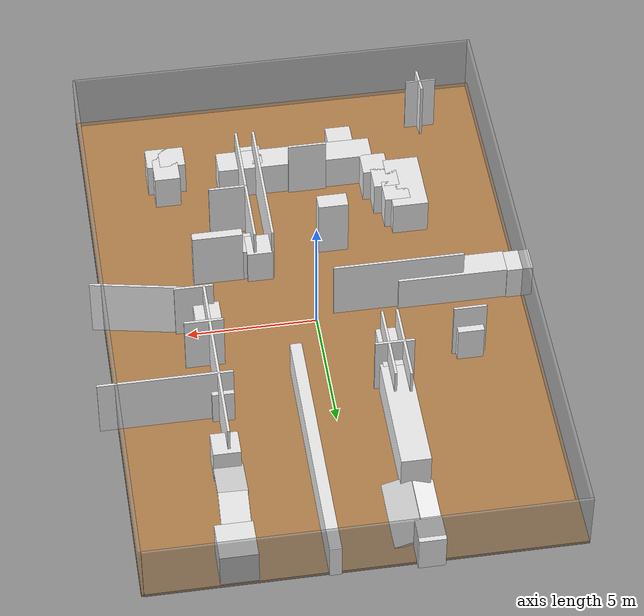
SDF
<sdf version="1.7">
 <world name="default">
  <light name="sun" type="directional">
   <pose>0 0 10 0 -0 0</pose>
   <diffuse>0.8 0.8 0.8 1</diffuse>
   <specular>0.2 0.2 0.2 1</specular>
   <attenuation>
    <range>1000</range>
    <constant>0.9</constant>
    <linear>0.01</linear>
    <quadratic>0.001</quadratic>
   </attenuation>
   <direction>-0.5 0.1 -0.9</direction>
   <spot><inner_angle>0</inner_angle><outer_angle>0</outer_angle><falloff>0</falloff></spot>
  </light>
  <physics name="default_physics" default="0" type="ode">
   <real_time_update_rate>1000</real_time_update_rate>
   <max_step_size>0.001</max_step_size>
   <real_time_factor>1</real_time_factor>
   <ode>
    <solver>
     <type>quick</type>
     <iters>150</iters>
     <precon_iters>0</precon_iters>
     <sor>1.4</sor>
     <use_dynamic_moi_rescaling>1</use_dynamic_moi_rescaling>
    </solver>
    <constraints>
     <cfm>1e-05</cfm>
     <erp>0.2</erp>
     <contact_max_correcting_vel>2000</contact_max_correcting_vel>
     <contact_surface_layer>0.01</contact_surface_layer>
    </constraints>
   </ode>
  </physics>
  <model name="box_1">
   <pose>0.05 -12.05 1.25 0 -0 0</pose>
   <static>1</static>
   <link name="link">
    <collision name="collision"><geometry><box><size>16.1 0.1 2.5</size></box></geometry></collision>
    <visual name="visual">
     <geometry><box><size>16.1 0.1 2.5</size></box></geometry>
     <material>
      <script><name>Gazebo/GreyTransparent</name><uri>file://media/materials/scripts/gazebo.material</uri></script>
     </material>
    </visual>
   </link>
  </model>
  <model name="box_2">
   <pose>8.06174 -0.026302 1.25 0 -0 0</pose>
   <static>1</static>
   <link name="link">
    <collision name="collision"><geometry><box><size>0.1 24.1 2.5</size></box></geometry></collision>
    <visual name="visual">
     <geometry><box><size>0.1 24.1 2.5</size></box></geometry>
     <material>
      <script><name>Gazebo/GreyTransparent</name><uri>file://media/materials/scripts/gazebo.material</uri></script>
     </material>
    </visual>
   </link>
  </model>
  <model name="box_3">
   <pose>-0.05 12.05 1.25 0 -0 0</pose>
   <static>1</static>
   <link name="link">
    <collision name="collision"><geometry><box><size>16.1 0.1 2.5</size></box></geometry></collision>
    <visual name="visual">
     <geometry><box><size>16.1 0.1 2.5</size></box></geometry>
     <material>
      <script><name>Gazebo/GreyTransparent</name><uri>file://media/materials/scripts/gazebo.material</uri></script>
     </material>
    </visual>
   </link>
  </model>
  <model name="box_4">
   <pose>-8.05 -0.05 1.25 0 -0 0</pose>
   <static>1</static>
   <link name="link">
    <collision name="collision"><geometry><box><size>0.1 24.1 2.5</size></box></geometry></collision>
    <visual name="visual">
     <geometry><box><size>0.1 24.1 2.5</size></box></geometry>
     <material>
      <script><name>Gazebo/GreyTransparent</name><uri>file://media/materials/scripts/gazebo.material</uri></script>
     </material>
    </visual>
   </link>
  </model>
  <model name="box_5">
   <pose>-0.014534 -0.091603 -0.05 0 -0 0</pose>
   <static>1</static>
   <link name="link">
    <collision name="collision"><geometry><box><size>16.2 24.2 0.1</size></box></geometry></collision>
    <visual name="visual">
     <geometry><box><size>16.2 24.2 0.1</size></box></geometry>
     <material>
      <script><name>Gazebo/WoodFloor</name><uri>file://media/materials/scripts/gazebo.material</uri></script>
     </material>
    </visual>
   </link>
  </model>
  <gravity>0 0 -9.8066</gravity>
  <magnetic_field>6e-06 2.3e-05 -4.2e-05</magnetic_field>
  <atmosphere type="adiabatic"/>
  <scene><ambient>0.4 0.4 0.4 1</ambient><background>0.7 0.7 0.7 1</background><shadows>1</shadows></scene>
  <spherical_coordinates>
   <surface_model>EARTH_WGS84</surface_model>
   <latitude_deg>0</latitude_deg>
   <longitude_deg>0</longitude_deg>
   <elevation>0</elevation>
   <heading_deg>0</heading_deg>
  </spherical_coordinates>
  <model name="box_8_clone">
   <pose>6.73576 -0.524414 1.25 0 0 -0.191358</pose>
   <static>1</static>
   <link name="link">
    <collision name="collision"><geometry><box><size>3.67087 0.1 2.5</size></box></geometry></collision>
    <visual name="visual">
     <geometry><box><size>3.67087 0.1 2.5</size></box></geometry>
     <material>
      <script><name>Gazebo/White</name><uri>file://media/materials/scripts/gazebo.material</uri></script>
     </material>
    </visual>
   </link>
  </model>
  <model name="box_9_clone_clone_0">
   <pose>-2.15604 -8.36183 0.75 0 -0 0</pose>
   <static>1</static>
   <link name="link">
    <collision name="collision"><geometry><box><size>1 1 1.5</size></box></geometry></collision>
    <visual name="visual">
     <geometry><box><size>1 1 1.5</size></box></geometry>
     <material>
      <script><name>Gazebo/White</name><uri>file://media/materials/scripts/gazebo.material</uri></script>
     </material>
    </visual>
   </link>
  </model>
  <model name="box_9_clone_clone_1">
   <pose>-0.214525 -7.57962 0.75 0 -0 0</pose>
   <static>1</static>
   <link name="link">
    <collision name="collision"><geometry><box><size>6.13337 1 1.5</size></box></geometry></collision>
    <visual name="visual">
     <geometry><box><size>6.13337 1 1.5</size></box></geometry>
     <material>
      <script><name>Gazebo/White</name><uri>file://media/materials/scripts/gazebo.material</uri></script>
     </material>
    </visual>
   </link>
  </model>
  <model name="box_9_clone_clone_2">
   <pose>-3.28595 -6.65197 0.75 0 -0 0</pose>
   <static>1</static>
   <link name="link">
    <collision name="collision"><geometry><box><size>1 1 1.5</size></box></geometry></collision>
    <visual name="visual">
     <geometry><box><size>1 1 1.5</size></box></geometry>
     <material>
      <script><name>Gazebo/White</name><uri>file://media/materials/scripts/gazebo.material</uri></script>
     </material>
    </visual>
   </link>
  </model>
  <model name="box_9_clone_clone_3">
   <pose>5.12025 -8.17677 0.75 0 -0 0</pose>
   <static>1</static>
   <link name="link">
    <collision name="collision"><geometry><box><size>1 1 1.5</size></box></geometry></collision>
    <visual name="visual">
     <geometry><box><size>1 1 1.5</size></box></geometry>
     <material>
      <script><name>Gazebo/White</name><uri>file://media/materials/scripts/gazebo.material</uri></script>
     </material>
    </visual>
   </link>
  </model>
  <model name="box_9_clone_clone_4">
   <pose>4.90057 -7.68592 0.75 0 -0 0</pose>
   <static>1</static>
   <link name="link">
    <collision name="collision"><geometry><box><size>1 1.46842 1.5</size></box></geometry></collision>
    <visual name="visual">
     <geometry><box><size>1 1.46842 1.5</size></box></geometry>
     <material>
      <script><name>Gazebo/White</name><uri>file://media/materials/scripts/gazebo.material</uri></script>
     </material>
    </visual>
   </link>
  </model>
  <model name="box_8_clone_clone_13_clone_clone_clone_clone_0">
   <pose>3.45255 -2.73975 1.25 0 -0 0</pose>
   <static>1</static>
   <link name="link">
    <collision name="collision"><geometry><box><size>1.94528 0.344025 2.5</size></box></geometry></collision>
    <visual name="visual">
     <geometry><box><size>1.94528 0.344025 2.5</size></box></geometry>
     <material>
      <script><name>Gazebo/White</name><uri>file://media/materials/scripts/gazebo.material</uri></script>
     </material>
    </visual>
   </link>
  </model>
  <model name="box_8_clone_clone_11_clone">
   <pose>-1.19486 -3.87817 1.25 0 -0 0</pose>
   <static>1</static>
   <link name="link">
    <collision name="collision"><geometry><box><size>1.16351 0.640021 2.5</size></box></geometry></collision>
    <visual name="visual">
     <geometry><box><size>1.16351 0.640021 2.5</size></box></geometry>
     <material>
      <script><name>Gazebo/White</name><uri>file://media/materials/scripts/gazebo.material</uri></script>
     </material>
    </visual>
   </link>
  </model>
  <model name="box_8_clone_clone_4_clone_2">
   <pose>-5.45875 2.39293 1.25 0 -0 0</pose>
   <static>1</static>
   <link name="link">
    <collision name="collision"><geometry><box><size>1.26584 0.1 2.5</size></box></geometry></collision>
    <visual name="visual">
     <geometry><box><size>1.26584 0.1 2.5</size></box></geometry>
     <material>
      <script><name>Gazebo/White</name><uri>file://media/materials/scripts/gazebo.material</uri></script>
     </material>
    </visual>
   </link>
  </model>
  <model name="box_9_clone_clone_7_clone">
   <pose>-5.47252 2.23106 0.75 0 -0 0</pose>
   <static>1</static>
   <link name="link">
    <collision name="collision"><geometry><box><size>1 1 1.5</size></box></geometry></collision>
    <visual name="visual">
     <geometry><box><size>1 1 1.5</size></box></geometry>
     <material>
      <script><name>Gazebo/White</name><uri>file://media/materials/scripts/gazebo.material</uri></script>
     </material>
    </visual>
   </link>
  </model>
  <model name="box_9_clone_clone_7_clone_clone">
   <pose>-7.89766 -0.627489 0.75 0 -0 0</pose>
   <static>1</static>
   <link name="link">
    <collision name="collision"><geometry><box><size>1 1 1.5</size></box></geometry></collision>
    <visual name="visual">
     <geometry><box><size>1 1 1.5</size></box></geometry>
     <material>
      <script><name>Gazebo/White</name><uri>file://media/materials/scripts/gazebo.material</uri></script>
     </material>
    </visual>
   </link>
  </model>
  <model name="box_9_clone_clone_7_clone_clone_3">
   <pose>-4.34563 -5.4456 0.75 0 -0 0</pose>
   <static>1</static>
   <link name="link">
    <collision name="collision"><geometry><box><size>1.3917 2.57973 1.5</size></box></geometry></collision>
    <visual name="visual">
     <geometry><box><size>1.3917 2.57973 1.5</size></box></geometry>
     <material>
      <script><name>Gazebo/White</name><uri>file://media/materials/scripts/gazebo.material</uri></script>
     </material>
    </visual>
   </link>
  </model>
  <model name="box_9_clone_clone_7_clone_clone_4">
   <pose>-3.89333 -5.04613 0.75 0 -0 0</pose>
   <static>1</static>
   <link name="link">
    <collision name="collision"><geometry><box><size>1 1 1.5</size></box></geometry></collision>
    <visual name="visual">
     <geometry><box><size>1 1 1.5</size></box></geometry>
     <material>
      <script><name>Gazebo/White</name><uri>file://media/materials/scripts/gazebo.material</uri></script>
     </material>
    </visual>
   </link>
  </model>
  <model name="box_9_clone_clone_7_clone_clone_5">
   <pose>-3.58867 -5.82199 0.75 0 -0 0</pose>
   <static>1</static>
   <link name="link">
    <collision name="collision"><geometry><box><size>1 1 1.5</size></box></geometry></collision>
    <visual name="visual">
     <geometry><box><size>1 1 1.5</size></box></geometry>
     <material>
      <script><name>Gazebo/White</name><uri>file://media/materials/scripts/gazebo.material</uri></script>
     </material>
    </visual>
   </link>
  </model>
  <model name="box_9_clone_clone_5_clone_2_clone_0">
   <pose>4.37795 6.75985 0.75 0 -0 0</pose>
   <static>1</static>
   <link name="link">
    <collision name="collision"><geometry><box><size>1.02973 1 1.5</size></box></geometry></collision>
    <visual name="visual">
     <geometry><box><size>1.02973 1 1.5</size></box></geometry>
     <material>
      <script><name>Gazebo/White</name><uri>file://media/materials/scripts/gazebo.material</uri></script>
     </material>
    </visual>
   </link>
  </model>
  <model name="box_9_clone_clone_5_clone_2_clone_0_clone_0">
   <pose>4.61046 -8.1706 0.75 0 -0 0</pose>
   <static>1</static>
   <link name="link">
    <collision name="collision"><geometry><box><size>1 1 1.5</size></box></geometry></collision>
    <visual name="visual">
     <geometry><box><size>1 1 1.5</size></box></geometry>
     <material>
      <script><name>Gazebo/White</name><uri>file://media/materials/scripts/gazebo.material</uri></script>
     </material>
    </visual>
   </link>
  </model>
  <model name="box_6_clone_clone_4_clone">
   <pose>4.47434 10.5847 1.40455 0 -1.3182 1.53996</pose>
   <static>1</static>
   <link name="link">
    <collision name="collision"><geometry><box><size>0.1 1.08009 2.76392</size></box></geometry></collision>
    <visual name="visual">
     <geometry><box><size>0.1 1.08009 2.76392</size></box></geometry>
     <material>
      <script><name>Gazebo/White</name><uri>file://media/materials/scripts/gazebo.material</uri></script>
     </material>
    </visual>
   </link>
  </model>
  <model name="box_9_clone_clone_7_clone_clone_clone">
   <pose>-5.32159 -0.673379 0.75 0 -0 0</pose>
   <static>1</static>
   <link name="link">
    <collision name="collision"><geometry><box><size>4.25949 1 1.5</size></box></geometry></collision>
    <visual name="visual">
     <geometry><box><size>4.25949 1 1.5</size></box></geometry>
     <material>
      <script><name>Gazebo/White</name><uri>file://media/materials/scripts/gazebo.material</uri></script>
     </material>
    </visual>
   </link>
  </model>
  <model name="box_8_clone_clone_3_clone">
   <pose>6.25131 4.20674 1.25 0 -0 0</pose>
   <static>1</static>
   <link name="link">
    <collision name="collision"><geometry><box><size>5.04273 0.1 2.5</size></box></geometry></collision>
    <visual name="visual">
     <geometry><box><size>5.04273 0.1 2.5</size></box></geometry>
     <material>
      <script><name>Gazebo/White</name><uri>file://media/materials/scripts/gazebo.material</uri></script>
     </material>
    </visual>
   </link>
  </model>
  <model name="box_9_clone_clone_7_clone_0">
   <pose>1.15259 7.24946 0.75 0 -0 0</pose>
   <static>1</static>
   <link name="link">
    <collision name="collision"><geometry><box><size>0.447667 9.79262 1.5</size></box></geometry></collision>
    <visual name="visual">
     <geometry><box><size>0.447667 9.79262 1.5</size></box></geometry>
     <material>
      <script><name>Gazebo/White</name><uri>file://media/materials/scripts/gazebo.material</uri></script>
     </material>
    </visual>
   </link>
  </model>
  <model name="box_8_clone_clone_3_clone_clone">
   <pose>-2.60171 9.85734 0.157596 -1.58129 -0.379315 0.005532</pose>
   <static>1</static>
   <link name="link">
    <collision name="collision"><geometry><box><size>0.87469 0.1 2.8877</size></box></geometry></collision>
    <visual name="visual">
     <geometry><box><size>0.87469 0.1 2.8877</size></box></geometry>
     <material>
      <script><name>Gazebo/White</name><uri>file://media/materials/scripts/gazebo.material</uri></script>
     </material>
    </visual>
   </link>
  </model>
  <model name="box_9_clone_clone_9_clone">
   <pose>-2.30467 11.7929 0.75 0 -0 0</pose>
   <static>1</static>
   <link name="link">
    <collision name="collision"><geometry><box><size>1 1 1.5</size></box></geometry></collision>
    <visual name="visual">
     <geometry><box><size>1 1 1.5</size></box></geometry>
     <material>
      <script><name>Gazebo/White</name><uri>file://media/materials/scripts/gazebo.material</uri></script>
     </material>
    </visual>
   </link>
  </model>
  <model name="box_6_clone_clone_3_clone_clone_clone">
   <pose>-2.72273 3.70807 1.25 0 -0 0</pose>
   <static>1</static>
   <link name="link">
    <collision name="collision"><geometry><box><size>0.1 3.23033 2.5</size></box></geometry></collision>
    <visual name="visual">
     <geometry><box><size>0.1 3.23033 2.5</size></box></geometry>
     <material>
      <script><name>Gazebo/White</name><uri>file://media/materials/scripts/gazebo.material</uri></script>
     </material>
    </visual>
   </link>
  </model>
  <model name="box_6_clone_clone_3_clone_clone_clone_clone">
   <pose>4.27871 3.44765 1.25 0 -0 0</pose>
   <static>1</static>
   <link name="link">
    <collision name="collision"><geometry><box><size>0.1 7.20492 2.5</size></box></geometry></collision>
    <visual name="visual">
     <geometry><box><size>0.1 7.20492 2.5</size></box></geometry>
     <material>
      <script><name>Gazebo/White</name><uri>file://media/materials/scripts/gazebo.material</uri></script>
     </material>
    </visual>
   </link>
  </model>
  <model name="box_6_clone_clone_3_clone_clone_clone_clone_0">
   <pose>2.0182 -5.31678 1.25 0 -0 0</pose>
   <static>1</static>
   <link name="link">
    <collision name="collision"><geometry><box><size>0.1 5.60332 2.5</size></box></geometry></collision>
    <visual name="visual">
     <geometry><box><size>0.1 5.60332 2.5</size></box></geometry>
     <material>
      <script><name>Gazebo/White</name><uri>file://media/materials/scripts/gazebo.material</uri></script>
     </material>
    </visual>
   </link>
  </model>
  <model name="box_6_clone_clone_3_clone_clone_clone_clone_0_clone">
   <pose>1.33283 -5.29976 1.25 0 -0 0</pose>
   <static>1</static>
   <link name="link">
    <collision name="collision"><geometry><box><size>0.1 5.60332 2.5</size></box></geometry></collision>
    <visual name="visual">
     <geometry><box><size>0.1 5.60332 2.5</size></box></geometry>
     <material>
      <script><name>Gazebo/White</name><uri>file://media/materials/scripts/gazebo.material</uri></script>
     </material>
    </visual>
   </link>
  </model>
  <model name="box_9_clone_clone_5_clone_2_clone_0_clone_clone">
   <pose>1.83634 -2.91858 0.75 0 -0 0</pose>
   <static>1</static>
   <link name="link">
    <collision name="collision"><geometry><box><size>1 1 1.5</size></box></geometry></collision>
    <visual name="visual">
     <geometry><box><size>1 1 1.5</size></box></geometry>
     <material>
      <script><name>Gazebo/White</name><uri>file://media/materials/scripts/gazebo.material</uri></script>
     </material>
    </visual>
   </link>
  </model>
  <model name="box_8_clone_clone">
   <pose>4.67136 -0.169302 1.25 0 -0 0</pose>
   <static>1</static>
   <link name="link">
    <collision name="collision"><geometry><box><size>1.5 0.1 2.5</size></box></geometry></collision>
    <visual name="visual">
     <geometry><box><size>1.5 0.1 2.5</size></box></geometry>
     <material>
      <script><name>Gazebo/White</name><uri>file://media/materials/scripts/gazebo.material</uri></script>
     </material>
    </visual>
   </link>
  </model>
  <model name="box_9_clone_clone_7_clone_clone_0">
   <pose>-2.40805 3.03977 0.75 0 -0 0</pose>
   <static>1</static>
   <link name="link">
    <collision name="collision"><geometry><box><size>1 1.88415 1.5</size></box></geometry></collision>
    <visual name="visual">
     <geometry><box><size>1 1.88415 1.5</size></box></geometry>
     <material>
      <script><name>Gazebo/White</name><uri>file://media/materials/scripts/gazebo.material</uri></script>
     </material>
    </visual>
   </link>
  </model>
  <model name="box_9_clone_clone_5_clone_2_clone_0_clone_0_clone">
   <pose>1.56966 -7.808 0.75 0 -0 0</pose>
   <static>1</static>
   <link name="link">
    <collision name="collision"><geometry><box><size>1 1 1.5</size></box></geometry></collision>
    <visual name="visual">
     <geometry><box><size>1 1 1.5</size></box></geometry>
     <material>
      <script><name>Gazebo/White</name><uri>file://media/materials/scripts/gazebo.material</uri></script>
     </material>
    </visual>
   </link>
  </model>
  <model name="box_9_clone_clone_5_clone_2_clone_clone_clone_0_clone">
   <pose>4.16141 3.94247 0.75 0 -0 0</pose>
   <static>1</static>
   <link name="link">
    <collision name="collision"><geometry><box><size>0.839425 1 1.5</size></box></geometry></collision>
    <visual name="visual">
     <geometry><box><size>0.839425 1 1.5</size></box></geometry>
     <material>
      <script><name>Gazebo/White</name><uri>file://media/materials/scripts/gazebo.material</uri></script>
     </material>
    </visual>
   </link>
  </model>
  <model name="box_9_clone_clone_5_clone_2_clone_clone_clone_0_clone_clone">
   <pose>4.22761 0.292409 0.75 0 -0 0</pose>
   <static>1</static>
   <link name="link">
    <collision name="collision"><geometry><box><size>1 1 1.5</size></box></geometry></collision>
    <visual name="visual">
     <geometry><box><size>1 1 1.5</size></box></geometry>
     <material>
      <script><name>Gazebo/White</name><uri>file://media/materials/scripts/gazebo.material</uri></script>
     </material>
    </visual>
   </link>
  </model>
  <model name="box_6_clone_clone_3_clone_clone_clone_clone_1">
   <pose>-2.14756 3.67113 1.25 0 -0 0.001144</pose>
   <static>1</static>
   <link name="link">
    <collision name="collision"><geometry><box><size>0.1 3.12165 2.5</size></box></geometry></collision>
    <visual name="visual">
     <geometry><box><size>0.1 3.12165 2.5</size></box></geometry>
     <material>
      <script><name>Gazebo/White</name><uri>file://media/materials/scripts/gazebo.material</uri></script>
     </material>
    </visual>
   </link>
  </model>
  <model name="box_9_clone_clone_8_clone_0_clone">
   <pose>-2.3529 6.21978 0.75 0 -0 0</pose>
   <static>1</static>
   <link name="link">
    <collision name="collision"><geometry><box><size>1.12201 4.75321 1.5</size></box></geometry></collision>
    <visual name="visual">
     <geometry><box><size>1.12201 4.75321 1.5</size></box></geometry>
     <material>
      <script><name>Gazebo/White</name><uri>file://media/materials/scripts/gazebo.material</uri></script>
     </material>
    </visual>
   </link>
  </model>
  <model name="box_8_clone_clone_3_clone_clone_clone">
   <pose>-3.21063 -0.339317 1.25 0 -0 0</pose>
   <static>1</static>
   <link name="link">
    <collision name="collision"><geometry><box><size>5.03031 0.1 2.5</size></box></geometry></collision>
    <visual name="visual">
     <geometry><box><size>5.03031 0.1 2.5</size></box></geometry>
     <material>
      <script><name>Gazebo/White</name><uri>file://media/materials/scripts/gazebo.material</uri></script>
     </material>
    </visual>
   </link>
  </model>
  <audio><device>default</device></audio>
  <model name="box_6_clone_clone_4_clone_clone">
   <pose>4.38248 8.16427 1.1171 0 -1.11157 -1.60232</pose>
   <static>1</static>
   <link name="link">
    <collision name="collision"><geometry><box><size>0.1 1.10854 2.5</size></box></geometry></collision>
    <visual name="visual">
     <geometry><box><size>0.1 1.10854 2.5</size></box></geometry>
     <material>
      <script><name>Gazebo/White</name><uri>file://media/materials/scripts/gazebo.material</uri></script>
     </material>
    </visual>
   </link>
  </model>
  <model name="box_9_clone_clone_5_clone_2_clone_0_clone_0_clone_0">
   <pose>2.56687 -3.08492 0.75 0 -0 0</pose>
   <static>1</static>
   <link name="link">
    <collision name="collision"><geometry><box><size>1 1 1.5</size></box></geometry></collision>
    <visual name="visual">
     <geometry><box><size>1 1 1.5</size></box></geometry>
     <material>
      <script><name>Gazebo/White</name><uri>file://media/materials/scripts/gazebo.material</uri></script>
     </material>
    </visual>
   </link>
  </model>
  <model name="box_8_clone_clone_11_clone_clone">
   <pose>2.72179 -5.17165 1.25 0 -0 0</pose>
   <static>1</static>
   <link name="link">
    <collision name="collision"><geometry><box><size>1.5 0.1 2.5</size></box></geometry></collision>
    <visual name="visual">
     <geometry><box><size>1.5 0.1 2.5</size></box></geometry>
     <material>
      <script><name>Gazebo/White</name><uri>file://media/materials/scripts/gazebo.material</uri></script>
     </material>
    </visual>
   </link>
  </model>
  <model name="box_8_clone_clone_11_clone_clone_0">
   <pose>-5.67141 -10.0374 1.25 0 -0 1.62008</pose>
   <static>1</static>
   <link name="link">
    <collision name="collision"><geometry><box><size>1.06277 0.1 2.5</size></box></geometry></collision>
    <visual name="visual">
     <geometry><box><size>1.06277 0.1 2.5</size></box></geometry>
     <material>
      <script><name>Gazebo/White</name><uri>file://media/materials/scripts/gazebo.material</uri></script>
     </material>
    </visual>
   </link>
  </model>
  <model name="box_8_clone_clone_11_clone_clone_1">
   <pose>-5.71384 -9.99262 1.25 0 -0 0</pose>
   <static>1</static>
   <link name="link">
    <collision name="collision"><geometry><box><size>1.19714 0.0589998 2.5</size></box></geometry></collision>
    <visual name="visual">
     <geometry><box><size>1.19714 0.0589998 2.5</size></box></geometry>
     <material>
      <script><name>Gazebo/White</name><uri>file://media/materials/scripts/gazebo.material</uri></script>
     </material>
    </visual>
   </link>
  </model>
  <model name="box_8_clone_clone_11_clone_clone_1_clone">
   <pose>-0.668626 -7.0443 1.25 0 -0 0</pose>
   <static>1</static>
   <link name="link">
    <collision name="collision"><geometry><box><size>1.5 0.1 2.5</size></box></geometry></collision>
    <visual name="visual">
     <geometry><box><size>1.5 0.1 2.5</size></box></geometry>
     <material>
      <script><name>Gazebo/White</name><uri>file://media/materials/scripts/gazebo.material</uri></script>
     </material>
    </visual>
   </link>
  </model>
  <model name="box_8_clone_clone_4_clone_2_clone">
   <pose>-2.37022 3.68087 1.25 0 -0 0</pose>
   <static>1</static>
   <link name="link">
    <collision name="collision"><geometry><box><size>1.5 0.1 2.5</size></box></geometry></collision>
    <visual name="visual">
     <geometry><box><size>1.5 0.1 2.5</size></box></geometry>
     <material>
      <script><name>Gazebo/White</name><uri>file://media/materials/scripts/gazebo.material</uri></script>
     </material>
    </visual>
   </link>
  </model>
  <model name="box_8_clone_clone_4_clone_2_clone_clone">
   <pose>4.50184 1.59903 1.25 0 -0 0</pose>
   <static>1</static>
   <link name="link">
    <collision name="collision"><geometry><box><size>1.5 0.1 2.5</size></box></geometry></collision>
    <visual name="visual">
     <geometry><box><size>1.5 0.1 2.5</size></box></geometry>
     <material>
      <script><name>Gazebo/White</name><uri>file://media/materials/scripts/gazebo.material</uri></script>
     </material>
    </visual>
   </link>
  </model>
  <model name="box_9_clone_clone_5_clone_2_clone_0_clone">
   <pose>4.56593 11.2134 0.75 0 -0 0</pose>
   <static>1</static>
   <link name="link">
    <collision name="collision"><geometry><box><size>1.40826 1.51414 1.5</size></box></geometry></collision>
    <visual name="visual">
     <geometry><box><size>1.40826 1.51414 1.5</size></box></geometry>
     <material>
      <script><name>Gazebo/White</name><uri>file://media/materials/scripts/gazebo.material</uri></script>
     </material>
    </visual>
   </link>
  </model>
  <model name="box_8_clone_clone_3_clone_clone_clone_0">
   <pose>-1.6685 9.82722 0.139081 -1.58106 0.315795 -0.001542</pose>
   <static>1</static>
   <link name="link">
    <collision name="collision"><geometry><box><size>1.1445 0.1 2.9207</size></box></geometry></collision>
    <visual name="visual">
     <geometry><box><size>1.1445 0.1 2.9207</size></box></geometry>
     <material>
      <script><name>Gazebo/White</name><uri>file://media/materials/scripts/gazebo.material</uri></script>
     </material>
    </visual>
   </link>
  </model>
 </world>
</sdf>
